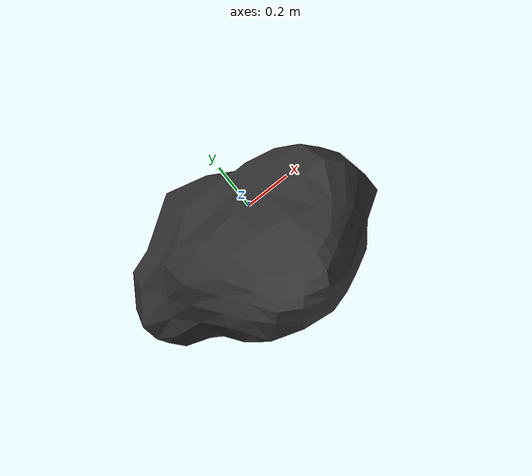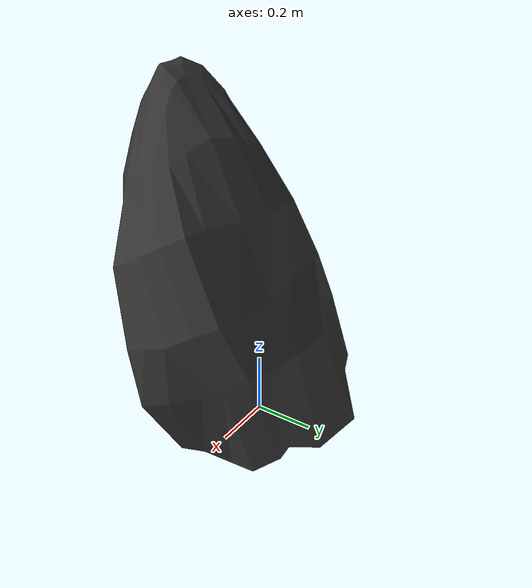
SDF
<?xml version="1.0" ?>
<sdf version='1.6'>
  <model name="qr_rock4">

    <static>true</static>

    <link name="qr_rock4_link">

    <visual name="link0_visual">
        <geometry>
          <mesh>
            <uri>package://lunar_local_planning/worlds/models/plane_rocks/qr_rock4/meshes/qr_rock4.dae</uri>
            <scale>3 3 3</scale>
          </mesh>
        </geometry>
        <material>
          <diffuse>0.2 0.2 0.2</diffuse>
          <specular>0.2 0.2 0.2</specular>
          <pbr>
            <metal>
              <albedo_map>package://lunar_local_planning/worlds/models/plane_rocks/qr_rock4/meshes/textures/qr_rock4_diffuse.png</albedo_map>
            </metal>
          </pbr>
        </material>
      </visual>

      <collision name="qr_rock4_colission">
        <geometry>
          <mesh>
            <uri>package://lunar_local_planning/worlds/models/plane_rocks/qr_rock4/meshes/qr_rock4.dae</uri>
            <scale>3 3 3</scale>
          </mesh>
        </geometry>
        <max_contacts>10</max_contacts>
        <surface>
          <bounce/>
          <friction>
            <ode/>
          </friction>
          <contact>
            <ode/>
          </contact>
        </surface>
      </collision>

    </link>

  </model>
</sdf>
